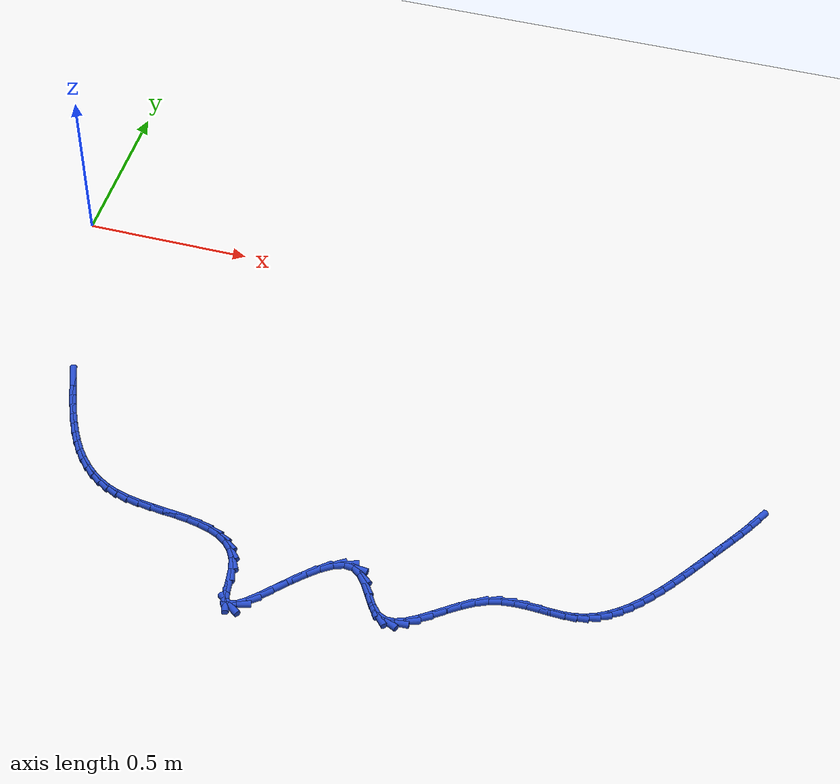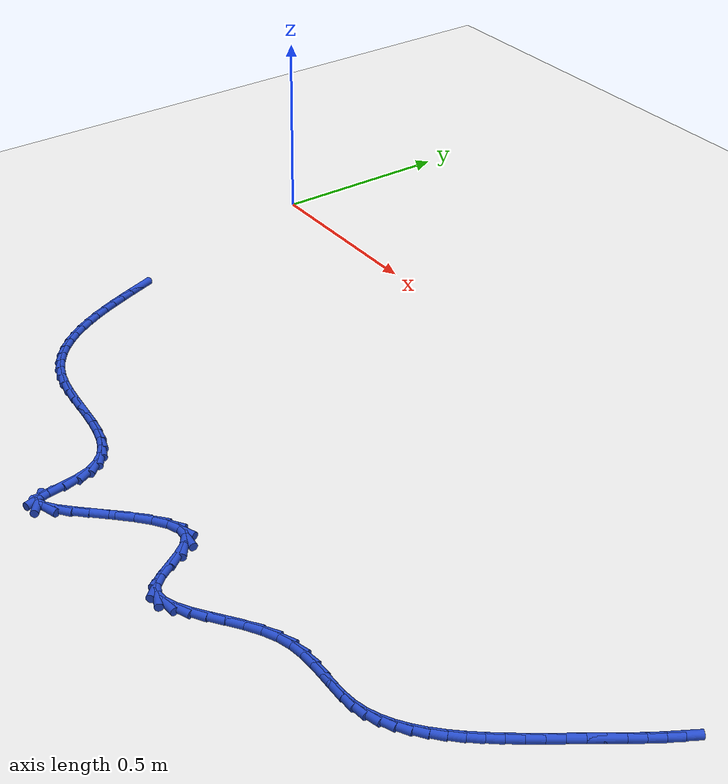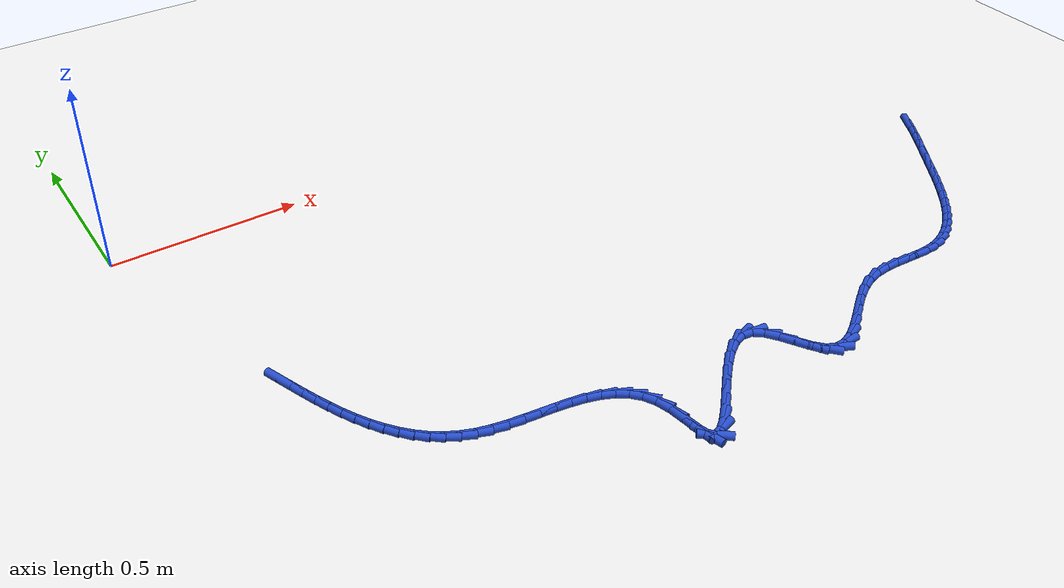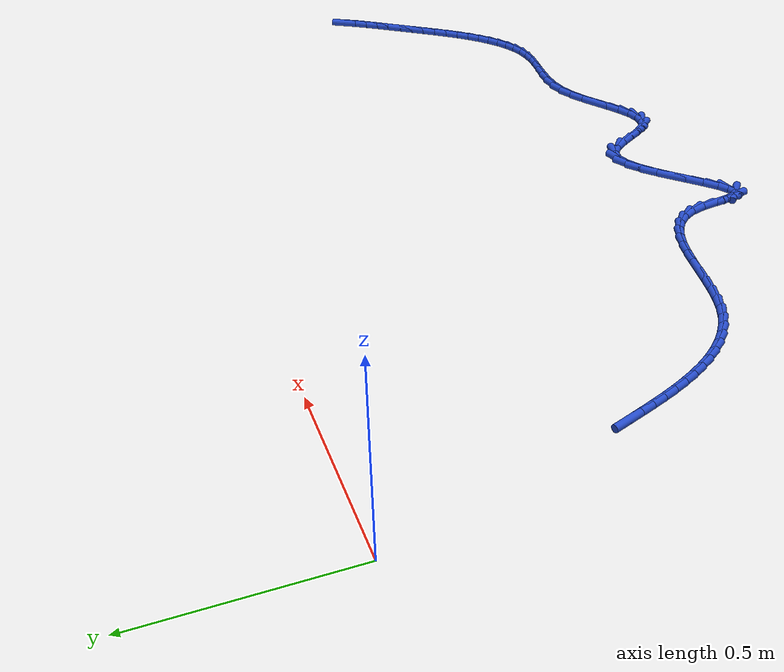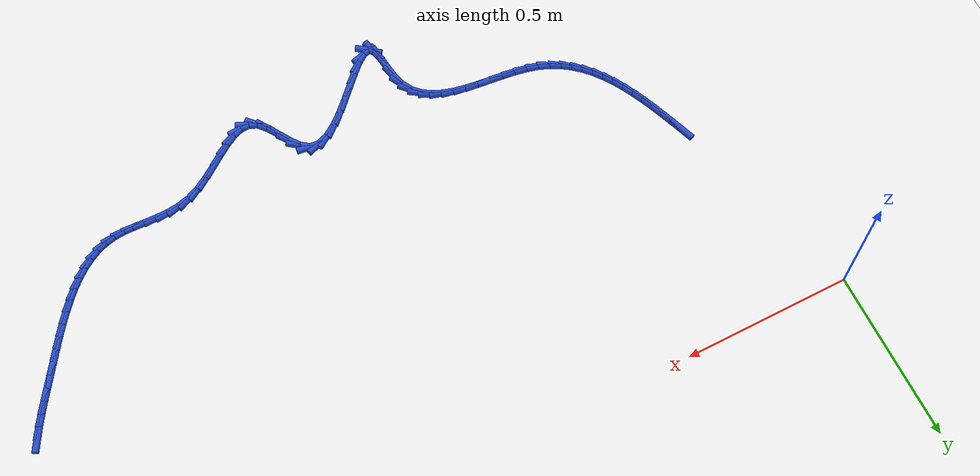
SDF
<sdf version="1.6">
 <world name="default">
  <model name="ground_plane">
   <static>1</static>
   <link name="link">
    <collision name="collision">
     <geometry><plane><normal>0 0 1</normal><size>100 100</size></plane></geometry>
     <surface><friction><ode><mu>100</mu><mu2>50</mu2></ode></friction></surface>
    </collision>
    <visual name="visual">
     <cast_shadows>0</cast_shadows>
     <geometry><plane><normal>0 0 1</normal><size>100 100</size></plane></geometry>
     <material>
      <script><uri>file://media/materials/scripts/gazebo.material</uri><name>Gazebo/WhiteGlow</name></script>
     </material>
    </visual>
   </link>
  </model>
  <model name="line">
   <link name="link_141">
    <pose>2.184466281886287 -0.6001065836549764 0.01 0 1.57 1.0502879991332112</pose>
    <collision name="collision">
     <geometry><cylinder><radius>0.01</radius><length>0.08</length></cylinder></geometry>
    </collision>
    <visual name="visual">
     <material>
      <script><name>Gazebo/Blue</name><uri>file://media/materials/scripts/gazebo.material</uri></script>
     </material>
     <geometry><cylinder><radius>0.01</radius><length>0.08</length></cylinder></geometry>
    </visual>
   </link>
   <link name="link_142">
    <pose>2.1671438102304355 -0.6303252745545586 0.01 0 1.57 1.0131492630827306</pose>
    <collision name="collision">
     <geometry><cylinder><radius>0.01</radius><length>0.08</length></cylinder></geometry>
    </collision>
    <visual name="visual">
     <material>
      <script><name>Gazebo/Blue</name><uri>file://media/materials/scripts/gazebo.material</uri></script>
     </material>
     <geometry><cylinder><radius>0.01</radius><length>0.08</length></cylinder></geometry>
    </visual>
   </link>
   <link name="link_143">
    <pose>2.14831955743649 -0.6605079909350833 0.01 0 1.57 0.9879636788039569</pose>
    <collision name="collision">
     <geometry><cylinder><radius>0.01</radius><length>0.08</length></cylinder></geometry>
    </collision>
    <visual name="visual">
     <material>
      <script><name>Gazebo/Blue</name><uri>file://media/materials/scripts/gazebo.material</uri></script>
     </material>
     <geometry><cylinder><radius>0.01</radius><length>0.08</length></cylinder></geometry>
    </visual>
   </link>
   <link name="link_144">
    <pose>2.1283693739965797 -0.6907710990525605 0.01 0 1.57 0.9738991133841578</pose>
    <collision name="collision">
     <geometry><cylinder><radius>0.01</radius><length>0.08</length></cylinder></geometry>
    </collision>
    <visual name="visual">
     <material>
      <script><name>Gazebo/Blue</name><uri>file://media/materials/scripts/gazebo.material</uri></script>
     </material>
     <geometry><cylinder><radius>0.01</radius><length>0.08</length></cylinder></geometry>
    </visual>
   </link>
   <link name="link_145">
    <pose>2.107669110402833 -0.7212309651630007 0.01 0 1.57 0.9703192765123217</pose>
    <collision name="collision">
     <geometry><cylinder><radius>0.01</radius><length>0.08</length></cylinder></geometry>
    </collision>
    <visual name="visual">
     <material>
      <script><name>Gazebo/Blue</name><uri>file://media/materials/scripts/gazebo.material</uri></script>
     </material>
     <geometry><cylinder><radius>0.01</radius><length>0.08</length></cylinder></geometry>
    </visual>
   </link>
   <link name="link_146">
    <pose>2.0865946168826426 -0.7520039552508764 0.01 0 1.57 0.9736682270443356</pose>
    <collision name="collision">
     <geometry><cylinder><radius>0.01</radius><length>0.08</length></cylinder></geometry>
    </collision>
    <visual name="visual">
     <material>
      <script><name>Gazebo/Blue</name><uri>file://media/materials/scripts/gazebo.material</uri></script>
     </material>
     <geometry><cylinder><radius>0.01</radius><length>0.08</length></cylinder></geometry>
    </visual>
   </link>
   <link name="link_147">
    <pose>2.0654377343132917 -0.7831202671908907 0.01 0 1.57 0.9718691362023252</pose>
    <collision name="collision">
     <geometry><cylinder><radius>0.01</radius><length>0.08</length></cylinder></geometry>
    </collision>
    <visual name="visual">
     <material>
      <script><name>Gazebo/Blue</name><uri>file://media/materials/scripts/gazebo.material</uri></script>
     </material>
     <geometry><cylinder><radius>0.01</radius><length>0.08</length></cylinder></geometry>
    </visual>
   </link>
   <link name="link_148">
    <pose>2.0441689322382 -0.8142804693541591 0.01 0 1.57 0.9620545596581714</pose>
    <collision name="collision">
     <geometry><cylinder><radius>0.01</radius><length>0.08</length></cylinder></geometry>
    </collision>
    <visual name="visual">
     <material>
      <script><name>Gazebo/Blue</name><uri>file://media/materials/scripts/gazebo.material</uri></script>
     </material>
     <geometry><cylinder><radius>0.01</radius><length>0.08</length></cylinder></geometry>
    </visual>
   </link>
   <link name="link_149">
    <pose>2.0226818452074182 -0.8451063207157725 0.01 0 1.57 0.9439317913561955</pose>
    <collision name="collision">
     <geometry><cylinder><radius>0.01</radius><length>0.08</length></cylinder></geometry>
    </collision>
    <visual name="visual">
     <material>
      <script><name>Gazebo/Blue</name><uri>file://media/materials/scripts/gazebo.material</uri></script>
     </material>
     <geometry><cylinder><radius>0.01</radius><length>0.08</length></cylinder></geometry>
    </visual>
   </link>
   <link name="link_150">
    <pose>2.000870107770995 -0.8752195802508197 0.01 0 1.57 0.9168823228911553</pose>
    <collision name="collision">
     <geometry><cylinder><radius>0.01</radius><length>0.08</length></cylinder></geometry>
    </collision>
    <visual name="visual">
     <material>
      <script><name>Gazebo/Blue</name><uri>file://media/materials/scripts/gazebo.material</uri></script>
     </material>
     <geometry><cylinder><radius>0.01</radius><length>0.08</length></cylinder></geometry>
    </visual>
   </link>
   <link name="link_151">
    <pose>1.9786273544789794 -0.9042420069343896 0.01 0 1.57 0.8799472702219016</pose>
    <collision name="collision">
     <geometry><cylinder><radius>0.01</radius><length>0.08</length></cylinder></geometry>
    </collision>
    <visual name="visual">
     <material>
      <script><name>Gazebo/Blue</name><uri>file://media/materials/scripts/gazebo.material</uri></script>
     </material>
     <geometry><cylinder><radius>0.01</radius><length>0.08</length></cylinder></geometry>
    </visual>
   </link>
   <link name="link_152">
    <pose>1.9558472198814219 -0.9317953597415719 0.01 0 1.57 0.8318162580503152</pose>
    <collision name="collision">
     <geometry><cylinder><radius>0.01</radius><length>0.08</length></cylinder></geometry>
    </collision>
    <visual name="visual">
     <material>
      <script><name>Gazebo/Blue</name><uri>file://media/materials/scripts/gazebo.material</uri></script>
     </material>
     <geometry><cylinder><radius>0.01</radius><length>0.08</length></cylinder></geometry>
    </visual>
   </link>
   <link name="link_153">
    <pose>1.93242333852837 -0.9575013976474552 0.01 0 1.57 0.7708462746563559</pose>
    <collision name="collision">
     <geometry><cylinder><radius>0.01</radius><length>0.08</length></cylinder></geometry>
    </collision>
    <visual name="visual">
     <material>
      <script><name>Gazebo/Blue</name><uri>file://media/materials/scripts/gazebo.material</uri></script>
     </material>
     <geometry><cylinder><radius>0.01</radius><length>0.08</length></cylinder></geometry>
    </visual>
   </link>
   <link name="link_154">
    <pose>1.908249344969874 -0.9809818796271287 0.01 0 1.57 0.6951615612724061</pose>
    <collision name="collision">
     <geometry><cylinder><radius>0.01</radius><length>0.08</length></cylinder></geometry>
    </collision>
    <visual name="visual">
     <material>
      <script><name>Gazebo/Blue</name><uri>file://media/materials/scripts/gazebo.material</uri></script>
     </material>
     <geometry><cylinder><radius>0.01</radius><length>0.08</length></cylinder></geometry>
    </visual>
   </link>
   <link name="link_155">
    <pose>1.883218873755983 -1.0018585646556821 0.01 0 1.57 0.602920402541282</pose>
    <collision name="collision">
     <geometry><cylinder><radius>0.01</radius><length>0.08</length></cylinder></geometry>
    </collision>
    <visual name="visual">
     <material>
      <script><name>Gazebo/Blue</name><uri>file://media/materials/scripts/gazebo.material</uri></script>
     </material>
     <geometry><cylinder><radius>0.01</radius><length>0.08</length></cylinder></geometry>
    </visual>
   </link>
   <link name="link_156">
    <pose>1.8572255594367473 -1.0197532117082033 0.01 0 1.57 0.4928590811714052</pose>
    <collision name="collision">
     <geometry><cylinder><radius>0.01</radius><length>0.08</length></cylinder></geometry>
    </collision>
    <visual name="visual">
     <material>
      <script><name>Gazebo/Blue</name><uri>file://media/materials/scripts/gazebo.material</uri></script>
     </material>
     <geometry><cylinder><radius>0.01</radius><length>0.08</length></cylinder></geometry>
    </visual>
   </link>
   <link name="link_157">
    <pose>1.8301630365622157 -1.0342875797597824 0.01 0 1.57 0.3651683480118075</pose>
    <collision name="collision">
     <geometry><cylinder><radius>0.01</radius><length>0.08</length></cylinder></geometry>
    </collision>
    <visual name="visual">
     <material>
      <script><name>Gazebo/Blue</name><uri>file://media/materials/scripts/gazebo.material</uri></script>
     </material>
     <geometry><cylinder><radius>0.01</radius><length>0.08</length></cylinder></geometry>
    </visual>
   </link>
   <link name="link_158">
    <pose>1.8019249396824375 -1.0450834277855083 0.01 0 1.57 0.2225096518388472</pose>
    <collision name="collision">
     <geometry><cylinder><radius>0.01</radius><length>0.08</length></cylinder></geometry>
    </collision>
    <visual name="visual">
     <material>
      <script><name>Gazebo/Blue</name><uri>file://media/materials/scripts/gazebo.material</uri></script>
     </material>
     <geometry><cylinder><radius>0.01</radius><length>0.08</length></cylinder></geometry>
    </visual>
   </link>
   <link name="link_159">
    <pose>1.772404903347462 -1.0517625147604701 0.01 0 1.57 0.08114774024314923</pose>
    <collision name="collision">
     <geometry><cylinder><radius>0.01</radius><length>0.08</length></cylinder></geometry>
    </collision>
    <visual name="visual">
     <material>
      <script><name>Gazebo/Blue</name><uri>file://media/materials/scripts/gazebo.material</uri></script>
     </material>
     <geometry><cylinder><radius>0.01</radius><length>0.08</length></cylinder></geometry>
    </visual>
   </link>
   <link name="link_160">
    <pose>1.7415500362554355 -1.054271827825124 0.01 0 1.57 -0.01246741606677483</pose>
    <collision name="collision">
     <geometry><cylinder><radius>0.01</radius><length>0.08</length></cylinder></geometry>
    </collision>
    <visual name="visual">
     <material>
      <script><name>Gazebo/Blue</name><uri>file://media/materials/scripts/gazebo.material</uri></script>
     </material>
     <geometry><cylinder><radius>0.01</radius><length>0.08</length></cylinder></geometry>
    </visual>
   </link>
   <link name="link_161">
    <pose>1.7095235226758185 -1.0538725192659075 0.01 0 1.57 -0.05195044461247352</pose>
    <collision name="collision">
     <geometry><cylinder><radius>0.01</radius><length>0.08</length></cylinder></geometry>
    </collision>
    <visual name="visual">
     <material>
      <script><name>Gazebo/Blue</name><uri>file://media/materials/scripts/gazebo.material</uri></script>
     </material>
     <geometry><cylinder><radius>0.01</radius><length>0.08</length></cylinder></geometry>
    </visual>
   </link>
   <link name="link_162">
    <pose>1.676543116053501 -1.0521576294580244 0.01 0 1.57 -0.04260699592185049</pose>
    <collision name="collision">
     <geometry><cylinder><radius>0.01</radius><length>0.08</length></cylinder></geometry>
    </collision>
    <visual name="visual">
     <material>
      <script><name>Gazebo/Blue</name><uri>file://media/materials/scripts/gazebo.material</uri></script>
     </material>
     <geometry><cylinder><radius>0.01</radius><length>0.08</length></cylinder></geometry>
    </visual>
   </link>
   <link name="link_163">
    <pose>1.6428265698354572 -1.0507201987893484 0.01 0 1.57 0.012649236635024793</pose>
    <collision name="collision">
     <geometry><cylinder><radius>0.01</radius><length>0.08</length></cylinder></geometry>
    </collision>
    <visual name="visual">
     <material>
      <script><name>Gazebo/Blue</name><uri>file://media/materials/scripts/gazebo.material</uri></script>
     </material>
     <geometry><cylinder><radius>0.01</radius><length>0.08</length></cylinder></geometry>
    </visual>
   </link>
   <link name="link_164">
    <pose>1.6085916374686586 -1.0511532676477524 0.01 0 1.57 0.11235371007629312</pose>
    <collision name="collision">
     <geometry><cylinder><radius>0.01</radius><length>0.08</length></cylinder></geometry>
    </collision>
    <visual name="visual">
     <material>
      <script><name>Gazebo/Blue</name><uri>file://media/materials/scripts/gazebo.material</uri></script>
     </material>
     <geometry><cylinder><radius>0.01</radius><length>0.08</length></cylinder></geometry>
    </visual>
   </link>
   <link name="link_165">
    <pose>1.5740560724000796 -1.055049876421111 0.01 0 1.57 0.2530795274766503</pose>
    <collision name="collision">
     <geometry><cylinder><radius>0.01</radius><length>0.08</length></cylinder></geometry>
    </collision>
    <visual name="visual">
     <material>
      <script><name>Gazebo/Blue</name><uri>file://media/materials/scripts/gazebo.material</uri></script>
     </material>
     <geometry><cylinder><radius>0.01</radius><length>0.08</length></cylinder></geometry>
    </visual>
   </link>
   <link name="link_166">
    <pose>1.539437628076692 -1.0640030654972963 0.01 0 1.57 0.419041658461055</pose>
    <collision name="collision">
     <geometry><cylinder><radius>0.01</radius><length>0.08</length></cylinder></geometry>
    </collision>
    <visual name="visual">
     <material>
      <script><name>Gazebo/Blue</name><uri>file://media/materials/scripts/gazebo.material</uri></script>
     </material>
     <geometry><cylinder><radius>0.01</radius><length>0.08</length></cylinder></geometry>
    </visual>
   </link>
   <link name="link_167">
    <pose>1.504958032657933 -1.0793610902188417 0.01 0 1.57 0.5456165535890332</pose>
    <collision name="collision">
     <geometry><cylinder><radius>0.01</radius><length>0.08</length></cylinder></geometry>
    </collision>
    <visual name="visual">
     <material>
      <script><name>Gazebo/Blue</name><uri>file://media/materials/scripts/gazebo.material</uri></script>
     </material>
     <geometry><cylinder><radius>0.01</radius><length>0.08</length></cylinder></geometry>
    </visual>
   </link>
   <link name="link_168">
    <pose>1.4708783362757545 -1.1000505387229609 0.01 0 1.57 0.6144931701860802</pose>
    <collision name="collision">
     <geometry><cylinder><radius>0.01</radius><length>0.08</length></cylinder></geometry>
    </collision>
    <visual name="visual">
     <material>
      <script><name>Gazebo/Blue</name><uri>file://media/materials/scripts/gazebo.material</uri></script>
     </material>
     <geometry><cylinder><radius>0.01</radius><length>0.08</length></cylinder></geometry>
    </visual>
   </link>
   <link name="link_169">
    <pose>1.4374820308685878 -1.1236159070670044 0.01 0 1.57 0.6365135049418126</pose>
    <collision name="collision">
     <geometry><cylinder><radius>0.01</radius><length>0.08</length></cylinder></geometry>
    </collision>
    <visual name="visual">
     <material>
      <script><name>Gazebo/Blue</name><uri>file://media/materials/scripts/gazebo.material</uri></script>
     </material>
     <geometry><cylinder><radius>0.01</radius><length>0.08</length></cylinder></geometry>
    </visual>
   </link>
   <link name="link_170">
    <pose>1.4050528704420817 -1.1475855517418219 0.01 0 1.57 0.6123921578324004</pose>
    <collision name="collision">
     <geometry><cylinder><radius>0.01</radius><length>0.08</length></cylinder></geometry>
    </collision>
    <visual name="visual">
     <material>
      <script><name>Gazebo/Blue</name><uri>file://media/materials/scripts/gazebo.material</uri></script>
     </material>
     <geometry><cylinder><radius>0.01</radius><length>0.08</length></cylinder></geometry>
    </visual>
   </link>
   <link name="link_171">
    <pose>1.3738746090018883 -1.1694878292382613 0.01 0 1.57 0.5298636841054125</pose>
    <collision name="collision">
     <geometry><cylinder><radius>0.01</radius><length>0.08</length></cylinder></geometry>
    </collision>
    <visual name="visual">
     <material>
      <script><name>Gazebo/Blue</name><uri>file://media/materials/scripts/gazebo.material</uri></script>
     </material>
     <geometry><cylinder><radius>0.01</radius><length>0.08</length></cylinder></geometry>
    </visual>
   </link>
   <link name="link_172">
    <pose>1.3442310005536564 -1.1868510960471728 0.01 0 1.57 0.35618964282752363</pose>
    <collision name="collision">
     <geometry><cylinder><radius>0.01</radius><length>0.08</length></cylinder></geometry>
    </collision>
    <visual name="visual">
     <material>
      <script><name>Gazebo/Blue</name><uri>file://media/materials/scripts/gazebo.material</uri></script>
     </material>
     <geometry><cylinder><radius>0.01</radius><length>0.08</length></cylinder></geometry>
    </visual>
   </link>
   <link name="link_173">
    <pose>1.3164057991030358 -1.197203708659404 0.01 0 1.57 0.033821158905118415</pose>
    <collision name="collision">
     <geometry><cylinder><radius>0.01</radius><length>0.08</length></cylinder></geometry>
    </collision>
    <visual name="visual">
     <material>
      <script><name>Gazebo/Blue</name><uri>file://media/materials/scripts/gazebo.material</uri></script>
     </material>
     <geometry><cylinder><radius>0.01</radius><length>0.08</length></cylinder></geometry>
    </visual>
   </link>
   <link name="link_174">
    <pose>1.2906827586556766 -1.1980740235658052 0.01 0 1.57 -0.44321849925007456</pose>
    <collision name="collision">
     <geometry><cylinder><radius>0.01</radius><length>0.08</length></cylinder></geometry>
    </collision>
    <visual name="visual">
     <material>
      <script><name>Gazebo/Blue</name><uri>file://media/materials/scripts/gazebo.material</uri></script>
     </material>
     <geometry><cylinder><radius>0.01</radius><length>0.08</length></cylinder></geometry>
    </visual>
   </link>
   <link name="link_175">
    <pose>1.2673447826459678 -1.1869950584157076 0.01 0 1.57 -0.8384382744629536</pose>
    <collision name="collision">
     <geometry><cylinder><radius>0.01</radius><length>0.08</length></cylinder></geometry>
    </collision>
    <visual name="visual">
     <material>
      <script><name>Gazebo/Blue</name><uri>file://media/materials/scripts/gazebo.material</uri></script>
     </material>
     <geometry><cylinder><radius>0.01</radius><length>0.08</length></cylinder></geometry>
    </visual>
   </link>
   <link name="link_176">
    <pose>1.2462944092776735 -1.1635842448326843 0.01 0 1.57 -0.9980710037729861</pose>
    <collision name="collision">
     <geometry><cylinder><radius>0.01</radius><length>0.08</length></cylinder></geometry>
    </collision>
    <visual name="visual">
     <material>
      <script><name>Gazebo/Blue</name><uri>file://media/materials/scripts/gazebo.material</uri></script>
     </material>
     <geometry><cylinder><radius>0.01</radius><length>0.08</length></cylinder></geometry>
    </visual>
   </link>
   <link name="link_177">
    <pose>1.226456143116658 -1.1328186709440027 0.01 0 1.57 -1.0195084000651091</pose>
    <collision name="collision">
     <geometry><cylinder><radius>0.01</radius><length>0.08</length></cylinder></geometry>
    </collision>
    <visual name="visual">
     <material>
      <script><name>Gazebo/Blue</name><uri>file://media/materials/scripts/gazebo.material</uri></script>
     </material>
     <geometry><cylinder><radius>0.01</radius><length>0.08</length></cylinder></geometry>
    </visual>
   </link>
   <link name="link_178">
    <pose>1.2065994567778406 -1.1005250050672168 0.01 0 1.57 -0.9248007919156412</pose>
    <collision name="collision">
     <geometry><cylinder><radius>0.01</radius><length>0.08</length></cylinder></geometry>
    </collision>
    <visual name="visual">
     <material>
      <script><name>Gazebo/Blue</name><uri>file://media/materials/scripts/gazebo.material</uri></script>
     </material>
     <geometry><cylinder><radius>0.01</radius><length>0.08</length></cylinder></geometry>
    </visual>
   </link>
   <link name="link_179">
    <pose>1.1854938228761362 -1.0725299155198762 0.01 0 1.57 -0.6483949744123079</pose>
    <collision name="collision">
     <geometry><cylinder><radius>0.01</radius><length>0.08</length></cylinder></geometry>
    </collision>
    <visual name="visual">
     <material>
      <script><name>Gazebo/Blue</name><uri>file://media/materials/scripts/gazebo.material</uri></script>
     </material>
     <geometry><cylinder><radius>0.01</radius><length>0.08</length></cylinder></geometry>
    </visual>
   </link>
   <link name="link_180">
    <pose>1.1619087140264623 -1.0546600706195324 0.01 0 1.57 -0.10779284919524601</pose>
    <collision name="collision">
     <geometry><cylinder><radius>0.01</radius><length>0.08</length></cylinder></geometry>
    </collision>
    <visual name="visual">
     <material>
      <script><name>Gazebo/Blue</name><uri>file://media/materials/scripts/gazebo.material</uri></script>
     </material>
     <geometry><cylinder><radius>0.01</radius><length>0.08</length></cylinder></geometry>
    </visual>
   </link>
   <link name="link_181">
    <pose>1.1348606677420394 -1.0517331395592535 0.01 0 1.57 0.34878945845932835</pose>
    <collision name="collision">
     <geometry><cylinder><radius>0.01</radius><length>0.08</length></cylinder></geometry>
    </collision>
    <visual name="visual">
     <material>
      <script><name>Gazebo/Blue</name><uri>file://media/materials/scripts/gazebo.material</uri></script>
     </material>
     <geometry><cylinder><radius>0.01</radius><length>0.08</length></cylinder></geometry>
    </visual>
   </link>
   <link name="link_182">
    <pose>1.1048124725544626 -1.0626603838580466 0.01 0 1.57 0.591794427496879</pose>
    <collision name="collision">
     <geometry><cylinder><radius>0.01</radius><length>0.08</length></cylinder></geometry>
    </collision>
    <visual name="visual">
     <material>
      <script><name>Gazebo/Blue</name><uri>file://media/materials/scripts/gazebo.material</uri></script>
     </material>
     <geometry><cylinder><radius>0.01</radius><length>0.08</length></cylinder></geometry>
    </visual>
   </link>
   <link name="link_183">
    <pose>1.072751583736217 -1.0842103556260314 0.01 0 1.57 0.7186335947312361</pose>
    <collision name="collision">
     <geometry><cylinder><radius>0.01</radius><length>0.08</length></cylinder></geometry>
    </collision>
    <visual name="visual">
     <material>
      <script><name>Gazebo/Blue</name><uri>file://media/materials/scripts/gazebo.material</uri></script>
     </material>
     <geometry><cylinder><radius>0.01</radius><length>0.08</length></cylinder></geometry>
    </visual>
   </link>
   <link name="link_184">
    <pose>1.0396661924287773 -1.1131486017258188 0.01 0 1.57 0.7849505924617225</pose>
    <collision name="collision">
     <geometry><cylinder><radius>0.01</radius><length>0.08</length></cylinder></geometry>
    </collision>
    <visual name="visual">
     <material>
      <script><name>Gazebo/Blue</name><uri>file://media/materials/scripts/gazebo.material</uri></script>
     </material>
     <geometry><cylinder><radius>0.01</radius><length>0.08</length></cylinder></geometry>
    </visual>
   </link>
   <link name="link_185">
    <pose>1.0065444897736198 -1.1462406690200233 0.01 0 1.57 0.8132177821424236</pose>
    <collision name="collision">
     <geometry><cylinder><radius>0.01</radius><length>0.08</length></cylinder></geometry>
    </collision>
    <visual name="visual">
     <material>
      <script><name>Gazebo/Blue</name><uri>file://media/materials/scripts/gazebo.material</uri></script>
     </material>
     <geometry><cylinder><radius>0.01</radius><length>0.08</length></cylinder></geometry>
    </visual>
   </link>
   <link name="link_186">
    <pose>0.9743746669122216 -1.1802521043712542 0.01 0 1.57 0.8090767768832254</pose>
    <collision name="collision">
     <geometry><cylinder><radius>0.01</radius><length>0.08</length></cylinder></geometry>
    </collision>
    <visual name="visual">
     <material>
      <script><name>Gazebo/Blue</name><uri>file://media/materials/scripts/gazebo.material</uri></script>
     </material>
     <geometry><cylinder><radius>0.01</radius><length>0.08</length></cylinder></geometry>
    </visual>
   </link>
   <link name="link_187">
    <pose>0.9441449149860583 -1.2119484546421255 0.01 0 1.57 0.7637978848193705</pose>
    <collision name="collision">
     <geometry><cylinder><radius>0.01</radius><length>0.08</length></cylinder></geometry>
    </collision>
    <visual name="visual">
     <material>
      <script><name>Gazebo/Blue</name><uri>file://media/materials/scripts/gazebo.material</uri></script>
     </material>
     <geometry><cylinder><radius>0.01</radius><length>0.08</length></cylinder></geometry>
    </visual>
   </link>
   <link name="link_188">
    <pose>0.9168434251366055 -1.2380952666952485 0.01 0 1.57 0.6386681187059506</pose>
    <collision name="collision">
     <geometry><cylinder><radius>0.01</radius><length>0.08</length></cylinder></geometry>
    </collision>
    <visual name="visual">
     <material>
      <script><name>Gazebo/Blue</name><uri>file://media/materials/scripts/gazebo.material</uri></script>
     </material>
     <geometry><cylinder><radius>0.01</radius><length>0.08</length></cylinder></geometry>
    </visual>
   </link>
   <link name="link_189">
    <pose>0.8934583885053398 -1.2554580873932364 0.01 0 1.57 0.2815116728244875</pose>
    <collision name="collision">
     <geometry><cylinder><radius>0.01</radius><length>0.08</length></cylinder></geometry>
    </collision>
    <visual name="visual">
     <material>
      <script><name>Gazebo/Blue</name><uri>file://media/materials/scripts/gazebo.material</uri></script>
     </material>
     <geometry><cylinder><radius>0.01</radius><length>0.08</length></cylinder></geometry>
    </visual>
   </link>
   <link name="link_190">
    <pose>0.8749779962337365 -1.2608024635987 0.01 0 1.57 -0.6658847236436096</pose>
    <collision name="collision">
     <geometry><cylinder><radius>0.01</radius><length>0.08</length></cylinder></geometry>
    </collision>
    <visual name="visual">
     <material>
      <script><name>Gazebo/Blue</name><uri>file://media/materials/scripts/gazebo.material</uri></script>
     </material>
     <geometry><cylinder><radius>0.01</radius><length>0.08</length></cylinder></geometry>
    </visual>
   </link>
   <link name="link_191">
    <pose>0.8623837662003303 -1.2509087185100902 0.01 0 1.57 -1.302887471508859</pose>
    <collision name="collision">
     <geometry><cylinder><radius>0.01</radius><length>0.08</length></cylinder></geometry>
    </collision>
    <visual name="visual">
     <material>
      <script><name>Gazebo/Blue</name><uri>file://media/materials/scripts/gazebo.material</uri></script>
     </material>
     <geometry><cylinder><radius>0.01</radius><length>0.08</length></cylinder></geometry>
    </visual>
   </link>
   <link name="link_192">
    <pose>0.8553783646385861 -1.2253888847247918 0.01 0 1.57 -1.4441174860607942</pose>
    <collision name="collision">
     <geometry><cylinder><radius>0.01</radius><length>0.08</length></cylinder></geometry>
    </collision>
    <visual name="visual">
     <material>
      <script><name>Gazebo/Blue</name><uri>file://media/materials/scripts/gazebo.material</uri></script>
     </material>
     <geometry><cylinder><radius>0.01</radius><length>0.08</length></cylinder></geometry>
    </visual>
   </link>
   <link name="link_193">
    <pose>0.850875177969786 -1.1900311841510196 0.01 0 1.57 -1.4303735423085187</pose>
    <collision name="collision">
     <geometry><cylinder><radius>0.01</radius><length>0.08</length></cylinder></geometry>
    </collision>
    <visual name="visual">
     <material>
      <script><name>Gazebo/Blue</name><uri>file://media/materials/scripts/gazebo.material</uri></script>
     </material>
     <geometry><cylinder><radius>0.01</radius><length>0.08</length></cylinder></geometry>
    </visual>
   </link>
   <link name="link_194">
    <pose>0.8454199095113318 -1.1514379845012386 0.01 0 1.57 -1.2996605648776378</pose>
    <collision name="collision">
     <geometry><cylinder><radius>0.01</radius><length>0.08</length></cylinder></geometry>
    </collision>
    <visual name="visual">
     <material>
      <script><name>Gazebo/Blue</name><uri>file://media/materials/scripts/gazebo.material</uri></script>
     </material>
     <geometry><cylinder><radius>0.01</radius><length>0.08</length></cylinder></geometry>
    </visual>
   </link>
   <link name="link_195">
    <pose>0.83560470340227 -1.1161291096340797 0.01 0 1.57 -1.0656696836799189</pose>
    <collision name="collision">
     <geometry><cylinder><radius>0.01</radius><length>0.08</length></cylinder></geometry>
    </collision>
    <visual name="visual">
     <material>
      <script><name>Gazebo/Blue</name><uri>file://media/materials/scripts/gazebo.material</uri></script>
     </material>
     <geometry><cylinder><radius>0.01</radius><length>0.08</length></cylinder></geometry>
    </visual>
   </link>
   <link name="link_196">
    <pose>0.8197764647894282 -1.0875054735567506 0.01 0 1.57 -0.8149459833185972</pose>
    <collision name="collision">
     <geometry><cylinder><radius>0.01</radius><length>0.08</length></cylinder></geometry>
    </collision>
    <visual name="visual">
     <material>
      <script><name>Gazebo/Blue</name><uri>file://media/materials/scripts/gazebo.material</uri></script>
     </material>
     <geometry><cylinder><radius>0.01</radius><length>0.08</length></cylinder></geometry>
    </visual>
   </link>
   <link name="link_197">
    <pose>0.7985327324638156 -1.0649677170690772 0.01 0 1.57 -0.5890007639209138</pose>
    <collision name="collision">
     <geometry><cylinder><radius>0.01</radius><length>0.08</length></cylinder></geometry>
    </collision>
    <visual name="visual">
     <material>
      <script><name>Gazebo/Blue</name><uri>file://media/materials/scripts/gazebo.material</uri></script>
     </material>
     <geometry><cylinder><radius>0.01</radius><length>0.08</length></cylinder></geometry>
    </visual>
   </link>
   <link name="link_198">
    <pose>0.772618590224416 -1.0476542346724662 0.01 0 1.57 -0.4094826289499574</pose>
    <collision name="collision">
     <geometry><cylinder><radius>0.01</radius><length>0.08</length></cylinder></geometry>
    </collision>
    <visual name="visual">
     <material>
      <script><name>Gazebo/Blue</name><uri>file://media/materials/scripts/gazebo.material</uri></script>
     </material>
     <geometry><cylinder><radius>0.01</radius><length>0.08</length></cylinder></geometry>
    </visual>
   </link>
   <link name="link_199">
    <pose>0.7427791218702138 -1.034703420868323 0.01 0 1.57 -0.27873492825620627</pose>
    <collision name="collision">
     <geometry><cylinder><radius>0.01</radius><length>0.08</length></cylinder></geometry>
    </collision>
    <visual name="visual">
     <material>
      <script><name>Gazebo/Blue</name><uri>file://media/materials/scripts/gazebo.material</uri></script>
     </material>
     <geometry><cylinder><radius>0.01</radius><length>0.08</length></cylinder></geometry>
    </visual>
   </link>
   <link name="link_200">
    <pose>0.7097594112001924 -1.0252536701580532 0.01 0 1.57 -0.18977202085599437</pose>
    <collision name="collision">
     <geometry><cylinder><radius>0.01</radius><length>0.08</length></cylinder></geometry>
    </collision>
    <visual name="visual">
     <material>
      <script><name>Gazebo/Blue</name><uri>file://media/materials/scripts/gazebo.material</uri></script>
     </material>
     <geometry><cylinder><radius>0.01</radius><length>0.08</length></cylinder></geometry>
    </visual>
   </link>
   <link name="link_201">
    <pose>0.6743045420133378 -1.0184433770430634 0.01 0 1.57 -0.13466127017426152</pose>
    <collision name="collision">
     <geometry><cylinder><radius>0.01</radius><length>0.08</length></cylinder></geometry>
    </collision>
    <visual name="visual">
     <material>
      <script><name>Gazebo/Blue</name><uri>file://media/materials/scripts/gazebo.material</uri></script>
     </material>
     <geometry><cylinder><radius>0.01</radius><length>0.08</length></cylinder></geometry>
    </visual>
   </link>
   <link name="link_202">
    <pose>0.6371595981086333 -1.013410936024759 0.01 0 1.57 -0.10764740620206734</pose>
    <collision name="collision">
     <geometry><cylinder><radius>0.01</radius><length>0.08</length></cylinder></geometry>
    </collision>
    <visual name="visual">
     <material>
      <script><name>Gazebo/Blue</name><uri>file://media/materials/scripts/gazebo.material</uri></script>
     </material>
     <geometry><cylinder><radius>0.01</radius><length>0.08</length></cylinder></geometry>
    </visual>
   </link>
   <link name="link_203">
    <pose>0.5990696632850636 -1.009294741604546 0.01 0 1.57 -0.10567873990372612</pose>
    <collision name="collision">
     <geometry><cylinder><radius>0.01</radius><length>0.08</length></cylinder></geometry>
    </collision>
    <visual name="visual">
     <material>
      <script><name>Gazebo/Blue</name><uri>file://media/materials/scripts/gazebo.material</uri></script>
     </material>
     <geometry><cylinder><radius>0.01</radius><length>0.08</length></cylinder></geometry>
    </visual>
   </link>
   <link name="link_204">
    <pose>0.5607798213416126 -1.0052331882838303 0.01 0 1.57 -0.12827731843942244</pose>
    <collision name="collision">
     <geometry><cylinder><radius>0.01</radius><length>0.08</length></cylinder></geometry>
    </collision>
    <visual name="visual">
     <material>
      <script><name>Gazebo/Blue</name><uri>file://media/materials/scripts/gazebo.material</uri></script>
     </material>
     <geometry><cylinder><radius>0.01</radius><length>0.08</length></cylinder></geometry>
    </visual>
   </link>
   <link name="link_205">
    <pose>0.5230351560772647 -1.0003646705640177 0.01 0 1.57 -0.17743642664268447</pose>
    <collision name="collision">
     <geometry><cylinder><radius>0.01</radius><length>0.08</length></cylinder></geometry>
    </collision>
    <visual name="visual">
     <material>
      <script><name>Gazebo/Blue</name><uri>file://media/materials/scripts/gazebo.material</uri></script>
     </material>
     <geometry><cylinder><radius>0.01</radius><length>0.08</length></cylinder></geometry>
    </visual>
   </link>
   <link name="link_206">
    <pose>0.48658075129100437 -0.9938275829465144 0.01 0 1.57 -0.2575849692438959</pose>
    <collision name="collision">
     <geometry><cylinder><radius>0.01</radius><length>0.08</length></cylinder></geometry>
    </collision>
    <visual name="visual">
     <material>
      <script><name>Gazebo/Blue</name><uri>file://media/materials/scripts/gazebo.material</uri></script>
     </material>
     <geometry><cylinder><radius>0.01</radius><length>0.08</length></cylinder></geometry>
    </visual>
   </link>
   <link name="link_207">
    <pose>0.45216169078181545 -0.9847603199327258 0.01 0 1.57 -0.3696013268941666</pose>
    <collision name="collision">
     <geometry><cylinder><radius>0.01</radius><length>0.08</length></cylinder></geometry>
    </collision>
    <visual name="visual">
     <material>
      <script><name>Gazebo/Blue</name><uri>file://media/materials/scripts/gazebo.material</uri></script>
     </material>
     <geometry><cylinder><radius>0.01</radius><length>0.08</length></cylinder></geometry>
    </visual>
   </link>
   <link name="link_208">
    <pose>0.4203946429609916 -0.9724536199893935 0.01 0 1.57 -0.4895373688094305</pose>
    <collision name="collision">
     <geometry><cylinder><radius>0.01</radius><length>0.08</length></cylinder></geometry>
    </collision>
    <visual name="visual">
     <material>
      <script><name>Gazebo/Blue</name><uri>file://media/materials/scripts/gazebo.material</uri></script>
     </material>
     <geometry><cylinder><radius>0.01</radius><length>0.08</length></cylinder></geometry>
    </visual>
   </link>
   <link name="link_209">
    <pose>0.39127291583870455 -0.9569377372834313 0.01 0 1.57 -0.6056845173903581</pose>
    <collision name="collision">
     <geometry><cylinder><radius>0.01</radius><length>0.08</length></cylinder></geometry>
    </collision>
    <visual name="visual">
     <material>
      <script><name>Gazebo/Blue</name><uri>file://media/materials/scripts/gazebo.material</uri></script>
     </material>
     <geometry><cylinder><radius>0.01</radius><length>0.08</length></cylinder></geometry>
    </visual>
   </link>
   <link name="link_210">
    <pose>0.3646009366063887 -0.9384670023437787 0.01 0 1.57 -0.7143028725724897</pose>
    <collision name="collision">
     <geometry><cylinder><radius>0.01</radius><length>0.08</length></cylinder></geometry>
    </collision>
    <visual name="visual">
     <material>
      <script><name>Gazebo/Blue</name><uri>file://media/materials/scripts/gazebo.material</uri></script>
     </material>
     <geometry><cylinder><radius>0.01</radius><length>0.08</length></cylinder></geometry>
    </visual>
   </link>
   <link name="link_211">
    <pose>0.3401830906464677 -0.9172957952989663 0.01 0 1.57 -0.8127524527192806</pose>
    <collision name="collision">
     <geometry><cylinder><radius>0.01</radius><length>0.08</length></cylinder></geometry>
    </collision>
    <visual name="visual">
     <material>
      <script><name>Gazebo/Blue</name><uri>file://media/materials/scripts/gazebo.material</uri></script>
     </material>
     <geometry><cylinder><radius>0.01</radius><length>0.08</length></cylinder></geometry>
    </visual>
   </link>
   <link name="link_212">
    <pose>0.31782376334136514 -0.8936784962775249 0.01 0 1.57 -0.8996279631672952</pose>
    <collision name="collision">
     <geometry><cylinder><radius>0.01</radius><length>0.08</length></cylinder></geometry>
    </collision>
    <visual name="visual">
     <material>
      <script><name>Gazebo/Blue</name><uri>file://media/materials/scripts/gazebo.material</uri></script>
     </material>
     <geometry><cylinder><radius>0.01</radius><length>0.08</length></cylinder></geometry>
    </visual>
   </link>
   <link name="link_213">
    <pose>0.2973273400735045 -0.8678694854079848 0.01 0 1.57 -0.9745661287652697</pose>
    <collision name="collision">
     <geometry><cylinder><radius>0.01</radius><length>0.08</length></cylinder></geometry>
    </collision>
    <visual name="visual">
     <material>
      <script><name>Gazebo/Blue</name><uri>file://media/materials/scripts/gazebo.material</uri></script>
     </material>
     <geometry><cylinder><radius>0.01</radius><length>0.08</length></cylinder></geometry>
    </visual>
   </link>
   <link name="link_214">
    <pose>0.27849820622530946 -0.8401231428188769 0.01 0 1.57 -1.037909040199575</pose>
    <collision name="collision">
     <geometry><cylinder><radius>0.01</radius><length>0.08</length></cylinder></geometry>
    </collision>
    <visual name="visual">
     <material>
      <script><name>Gazebo/Blue</name><uri>file://media/materials/scripts/gazebo.material</uri></script>
     </material>
     <geometry><cylinder><radius>0.01</radius><length>0.08</length></cylinder></geometry>
    </visual>
   </link>
   <link name="link_215">
    <pose>0.2611407471792031 -0.8106938486387312 0.01 0 1.57 -1.0903767659578918</pose>
    <collision name="collision">
     <geometry><cylinder><radius>0.01</radius><length>0.08</length></cylinder></geometry>
    </collision>
    <visual name="visual">
     <material>
      <script><name>Gazebo/Blue</name><uri>file://media/materials/scripts/gazebo.material</uri></script>
     </material>
     <geometry><cylinder><radius>0.01</radius><length>0.08</length></cylinder></geometry>
    </visual>
   </link>
   <link name="link_216">
    <pose>0.2450593483176099 -0.7798359829960794 0.01 0 1.57 -1.132820034733744</pose>
    <collision name="collision">
     <geometry><cylinder><radius>0.01</radius><length>0.08</length></cylinder></geometry>
    </collision>
    <visual name="visual">
     <material>
      <script><name>Gazebo/Blue</name><uri>file://media/materials/scripts/gazebo.material</uri></script>
     </material>
     <geometry><cylinder><radius>0.01</radius><length>0.08</length></cylinder></geometry>
    </visual>
   </link>
   <link name="link_217">
    <pose>0.23005839502295292 -0.7478039260194513 0.01 0 1.57 -1.166061120498239</pose>
    <collision name="collision">
     <geometry><cylinder><radius>0.01</radius><length>0.08</length></cylinder></geometry>
    </collision>
    <visual name="visual">
     <material>
      <script><name>Gazebo/Blue</name><uri>file://media/materials/scripts/gazebo.material</uri></script>
     </material>
     <geometry><cylinder><radius>0.01</radius><length>0.08</length></cylinder></geometry>
    </visual>
   </link>
   <link name="link_218">
    <pose>0.21594227267765573 -0.714852057837378 0.01 0 1.57 -1.1908032783136349</pose>
    <collision name="collision">
     <geometry><cylinder><radius>0.01</radius><length>0.08</length></cylinder></geometry>
    </collision>
    <visual name="visual">
     <material>
      <script><name>Gazebo/Blue</name><uri>file://media/materials/scripts/gazebo.material</uri></script>
     </material>
     <geometry><cylinder><radius>0.01</radius><length>0.08</length></cylinder></geometry>
    </visual>
   </link>
   <link name="link_219">
    <pose>0.20251536666414188 -0.6812347585783898 0.01 0 1.57 -1.2075843187714754</pose>
    <collision name="collision">
     <geometry><cylinder><radius>0.01</radius><length>0.08</length></cylinder></geometry>
    </collision>
    <visual name="visual">
     <material>
      <script><name>Gazebo/Blue</name><uri>file://media/materials/scripts/gazebo.material</uri></script>
     </material>
     <geometry><cylinder><radius>0.01</radius><length>0.08</length></cylinder></geometry>
    </visual>
   </link>
   <link name="link_220">
    <pose>0.18958206236483496 -0.6472064083710173 0.01 0 1.57 -1.2167545586494943</pose>
    <collision name="collision">
     <geometry><cylinder><radius>0.01</radius><length>0.08</length></cylinder></geometry>
    </collision>
    <visual name="visual">
     <material>
      <script><name>Gazebo/Blue</name><uri>file://media/materials/scripts/gazebo.material</uri></script>
     </material>
     <geometry><cylinder><radius>0.01</radius><length>0.08</length></cylinder></geometry>
    </visual>
   </link>
   <link name="link_221">
    <pose>0.17694674516215858 -0.6130213873437913 0.01 0 1.57 -1.218465769149178</pose>
    <collision name="collision">
     <geometry><cylinder><radius>0.01</radius><length>0.08</length></cylinder></geometry>
    </collision>
    <visual name="visual">
     <material>
      <script><name>Gazebo/Blue</name><uri>file://media/materials/scripts/gazebo.material</uri></script>
     </material>
     <geometry><cylinder><radius>0.01</radius><length>0.08</length></cylinder></geometry>
    </visual>
   </link>
  </model>
 </world>
</sdf>
